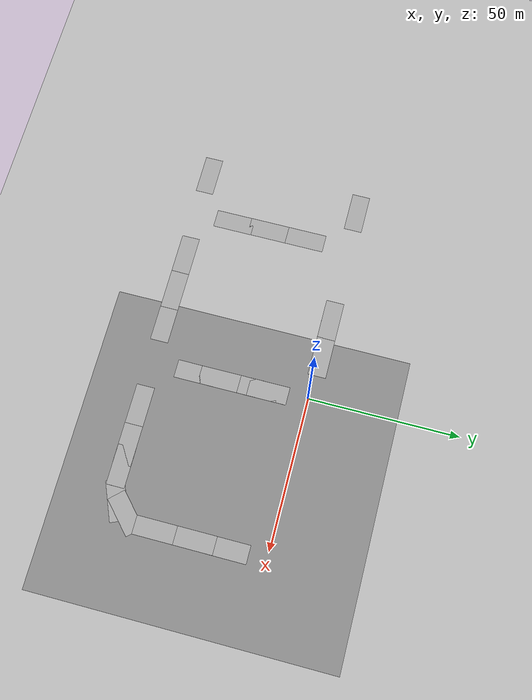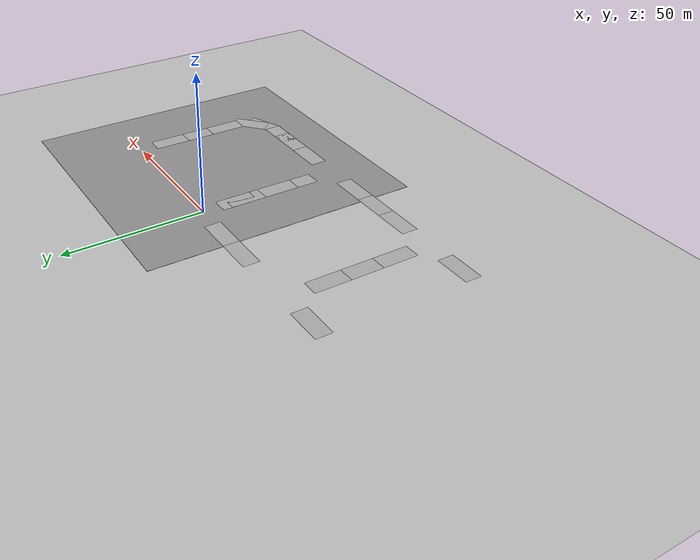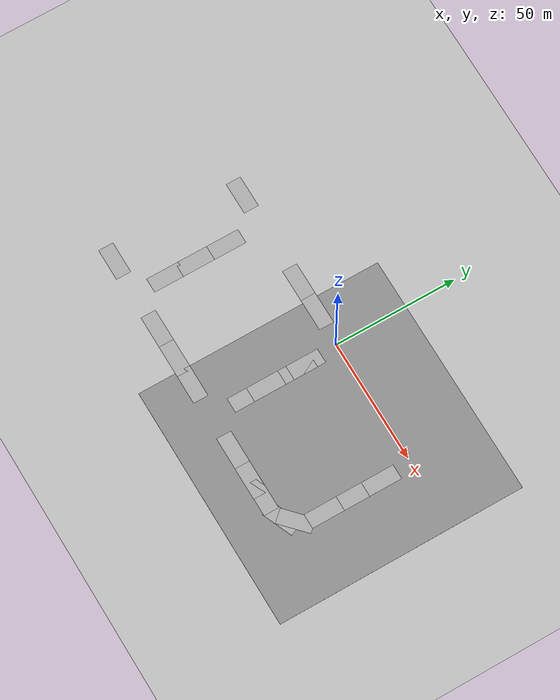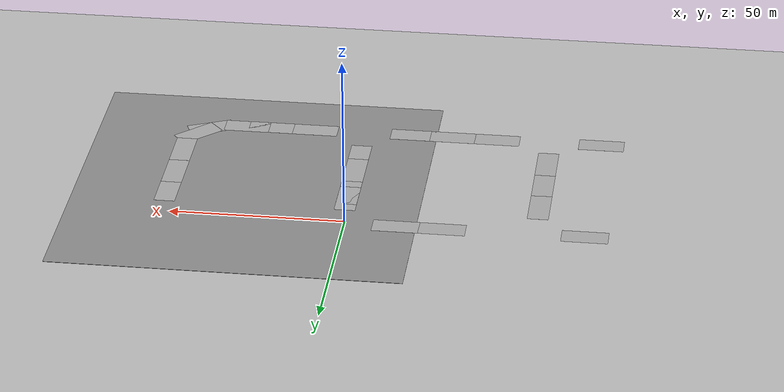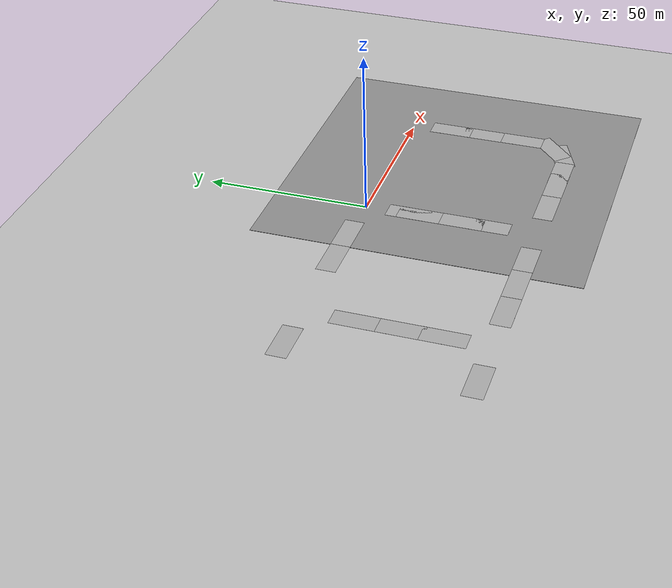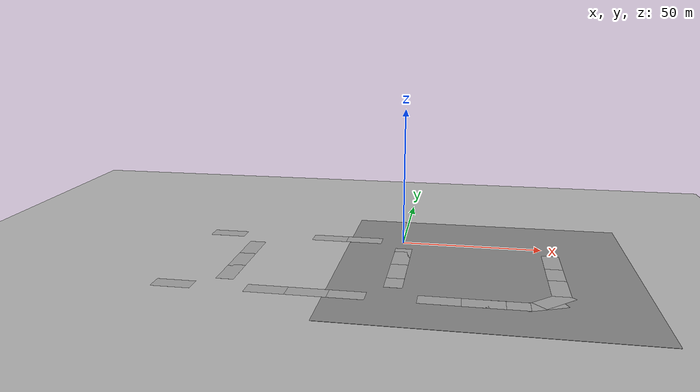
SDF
<sdf version="1.6">
 <world name="default">
  <model name="ground_plane">
   <pose>0 0 -1 0 -0 0</pose>
   <static>1</static>
   <link name="link">
    <collision name="collision">
     <geometry><plane><normal>0 0 1</normal><size>100 100</size></plane></geometry>
     <surface><friction><ode><mu>100</mu><mu2>50</mu2></ode></friction></surface>
    </collision>
    <visual name="visual">
     <cast_shadows>0</cast_shadows>
     <geometry><plane><normal>0 0 1</normal><size>100 100</size></plane></geometry>
     <material>
      <script><uri>file://media/materials/scripts/gazebo.material</uri><name>Gazebo/Grey</name></script>
     </material>
    </visual>
   </link>
  </model>
  <model name="road_4">
   <link name="body">
    <visual name="visual">
     <geometry><mesh><uri>file://road.dae</uri></mesh></geometry>
     <material><shader type="pixel"/></material>
    </visual>
   </link>
   <static>1</static>
   <pose>0.882038 -16.545 0 0 -0 0</pose>
  </model>
  <model name="road_5">
   <link name="body">
    <visual name="visual">
     <geometry><mesh><uri>file://road.dae</uri></mesh></geometry>
     <material><shader type="pixel"/></material>
    </visual>
   </link>
   <static>1</static>
   <pose>0.886692 -29.602 0 0 -0 0</pose>
  </model>
  <model name="road_6">
   <link name="body">
    <visual name="visual">
     <geometry><mesh><uri>file://road.dae</uri></mesh></geometry>
     <material><shader type="pixel"/></material>
    </visual>
   </link>
   <static>1</static>
   <pose>0.897447 -37.6376 0 0 -0 0</pose>
  </model>
  <model name="road_4_clone_clone_1_clone">
   <link name="body">
    <visual name="visual">
     <geometry><mesh><uri>file://road.dae</uri></mesh></geometry>
     <material><shader type="pixel"/></material>
    </visual>
   </link>
   <static>1</static>
   <pose>-14.6376 0.870939 0 0 -0 1.57</pose>
  </model>
  <model name="road_4_clone_clone_1_clone_0">
   <link name="body">
    <visual name="visual">
     <geometry><mesh><uri>file://road.dae</uri></mesh></geometry>
     <material><shader type="pixel"/></material>
    </visual>
   </link>
   <static>1</static>
   <pose>-27.7601 0.868153 0 0 -0 1.57</pose>
  </model>
  <model name="road_4_clone_clone_1_clone_2">
   <link name="body">
    <visual name="visual">
     <geometry><mesh><uri>file://road.dae</uri></mesh></geometry>
     <material><shader type="pixel"/></material>
    </visual>
   </link>
   <static>1</static>
   <pose>-67.7579 0.529761 0 0 -0 1.57</pose>
  </model>
  <model name="road_4_clone_clone_1_clone_3">
   <link name="body">
    <visual name="visual">
     <geometry><mesh><uri>file://road.dae</uri></mesh></geometry>
     <material><shader type="pixel"/></material>
    </visual>
   </link>
   <static>1</static>
   <pose>-68.7257 -52.5495 0 0 -0 1.57</pose>
  </model>
  <model name="road_4_clone_clone_1_clone_4">
   <link name="body">
    <visual name="visual">
     <geometry><mesh><uri>file://road.dae</uri></mesh></geometry>
     <material><shader type="pixel"/></material>
    </visual>
   </link>
   <static>1</static>
   <pose>-38.1284 -52.3454 0 0 -0 1.57</pose>
  </model>
  <model name="road_4_clone_clone_1_clone_5">
   <link name="body">
    <visual name="visual">
     <geometry><mesh><uri>file://road.dae</uri></mesh></geometry>
     <material><shader type="pixel"/></material>
    </visual>
   </link>
   <static>1</static>
   <pose>-24.9965 -52.3596 0 0 -0 1.57</pose>
  </model>
  <model name="road_4_clone_clone_1_clone_6">
   <link name="body">
    <visual name="visual">
     <geometry><mesh><uri>file://road.dae</uri></mesh></geometry>
     <material><shader type="pixel"/></material>
    </visual>
   </link>
   <static>1</static>
   <pose>-13.2537 -52.379 0 0 -0 1.57</pose>
  </model>
  <model name="road_4_clone_clone_1_clone_7">
   <link name="body">
    <visual name="visual">
     <geometry><mesh><uri>file://road.dae</uri></mesh></geometry>
     <material><shader type="pixel"/></material>
    </visual>
   </link>
   <static>1</static>
   <pose>15.7241 -52.1418 0 0 -0 1.57</pose>
  </model>
  <model name="road_4_clone_clone_1_clone_8">
   <link name="body">
    <visual name="visual">
     <geometry><mesh><uri>file://road.dae</uri></mesh></geometry>
     <material><shader type="pixel"/></material>
    </visual>
   </link>
   <static>1</static>
   <pose>28.9006 -52.1734 0 0 -0 1.57</pose>
  </model>
  <model name="road_4_clone_clone_1_clone_9_clone_0">
   <link name="body">
    <visual name="visual">
     <geometry><mesh><uri>file://road.dae</uri></mesh></geometry>
     <material><shader type="pixel"/></material>
    </visual>
   </link>
   <static>1</static>
   <pose>36.0727 -52.1119 0 0 -0 1.57</pose>
  </model>
  <model name="road_4_clone">
   <link name="body">
    <visual name="visual">
     <geometry><mesh><uri>file://road.dae</uri></mesh></geometry>
     <material><shader type="pixel"/></material>
    </visual>
   </link>
   <static>1</static>
   <pose>52.4651 -36.1257 0.03 0 -0 0</pose>
  </model>
  <model name="road_4_clone_0">
   <link name="body">
    <visual name="visual">
     <geometry><mesh><uri>file://road.dae</uri></mesh></geometry>
     <material><shader type="pixel"/></material>
    </visual>
   </link>
   <static>1</static>
   <pose>52.4593 -23.2838 0 0 -0 0</pose>
  </model>
  <model name="road_4_clone_1">
   <link name="body">
    <visual name="visual">
     <geometry><mesh><uri>file://road.dae</uri></mesh></geometry>
     <material><shader type="pixel"/></material>
    </visual>
   </link>
   <static>1</static>
   <pose>52.4811 -12.4732 0 0 -0 0</pose>
  </model>
  <model name="road_4_clone_10">
   <link name="body">
    <visual name="visual">
     <geometry><mesh><uri>file://road.dae</uri></mesh></geometry>
     <material><shader type="pixel"/></material>
    </visual>
   </link>
   <static>1</static>
   <pose>-53.8389 -14.3432 0 0 -0 0</pose>
  </model>
  <model name="road_4_clone_11">
   <link name="body">
    <visual name="visual">
     <geometry><mesh><uri>file://road.dae</uri></mesh></geometry>
     <material><shader type="pixel"/></material>
    </visual>
   </link>
   <static>1</static>
   <pose>-53.8363 -27.4382 0 0 -0 0</pose>
  </model>
  <model name="road_4_clone_12">
   <link name="body">
    <visual name="visual">
     <geometry><mesh><uri>file://road.dae</uri></mesh></geometry>
     <material><shader type="pixel"/></material>
    </visual>
   </link>
   <static>1</static>
   <pose>-53.8109 -39.4833 0 0 -0 0</pose>
  </model>
  <model name="ground_plane_0">
   <static>1</static>
   <link name="link">
    <collision name="collision">
     <geometry><plane><normal>0 0 1</normal><size>100 100</size></plane></geometry>
     <surface>
      <contact><collide_bitmask>65535</collide_bitmask></contact>
      <friction><ode><mu>100</mu><mu2>50</mu2></ode></friction>
     </surface>
    </collision>
    <visual name="visual">
     <cast_shadows>0</cast_shadows>
     <geometry><plane><normal>0 0 1</normal><size>100 100</size></plane></geometry>
     <material>
      <script><uri>file://media/materials/scripts/gazebo.material</uri><name>Gazebo/Grey</name></script>
     </material>
    </visual>
   </link>
   <pose>-68.0009 -12.7006 -2 0 -0 0</pose>
  </model>
  <model name="ground_plane_3">
   <static>1</static>
   <link name="link">
    <collision name="collision">
     <geometry><plane><normal>0 0 1</normal><size>100 100</size></plane></geometry>
     <surface>
      <contact><collide_bitmask>65535</collide_bitmask></contact>
      <friction><ode><mu>100</mu><mu2>50</mu2></ode></friction>
     </surface>
    </collision>
    <visual name="visual">
     <cast_shadows>0</cast_shadows>
     <geometry><plane><normal>0 0 1</normal><size>100 100</size></plane></geometry>
     <material>
      <script><uri>file://media/materials/scripts/gazebo.material</uri><name>Gazebo/Grey</name></script>
     </material>
    </visual>
   </link>
   <pose>29.852 -20.4012 -1 0 -0 0</pose>
  </model>
  <model name="road_4_clone_clone_1_clone_9_clone_clone_clone_clone_clone_clone_clone">
   <link name="body">
    <visual name="visual">
     <geometry><mesh><uri>file://road.dae</uri></mesh></geometry>
     <material><shader type="pixel"/></material>
    </visual>
   </link>
   <static>1</static>
   <pose>46.7011 -50.2069 -0.05 0 -0 1.97</pose>
  </model>
  <model name="road_4_clone_clone_1_clone_9_clone_clone_clone_clone_clone_clone_0">
   <link name="body">
    <visual name="visual">
     <geometry><mesh><uri>file://road.dae</uri></mesh></geometry>
     <material><shader type="pixel"/></material>
    </visual>
   </link>
   <static>1</static>
   <pose>49.9132 -46.4606 0 0 -0 2.32</pose>
  </model>
  <model name="road_4_clone_13">
   <link name="body">
    <visual name="visual">
     <geometry><mesh><uri>file://road.dae</uri></mesh></geometry>
     <material><shader type="pixel"/></material>
    </visual>
   </link>
   <static>1</static>
   <pose>0.865175 -13.148 0 0 -0 0</pose>
  </model>
 </world>
</sdf>
